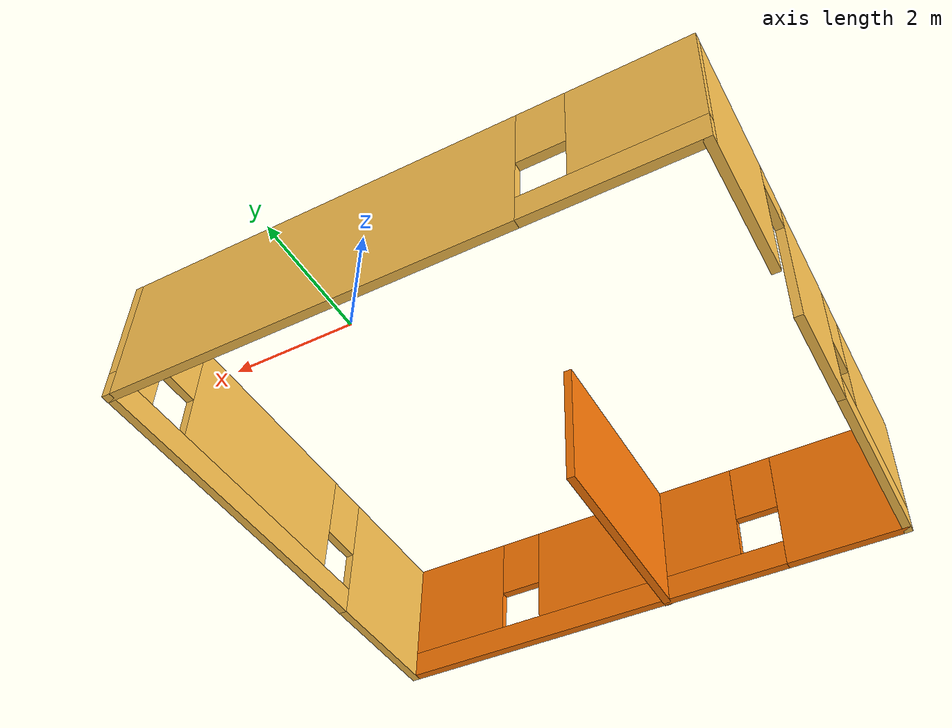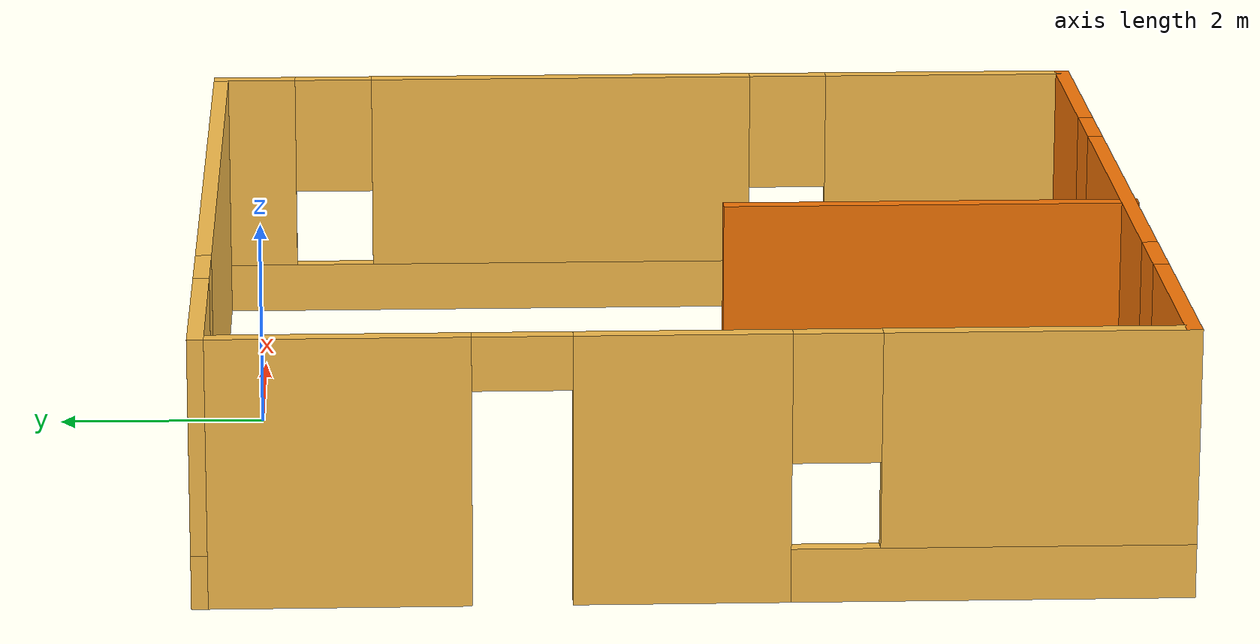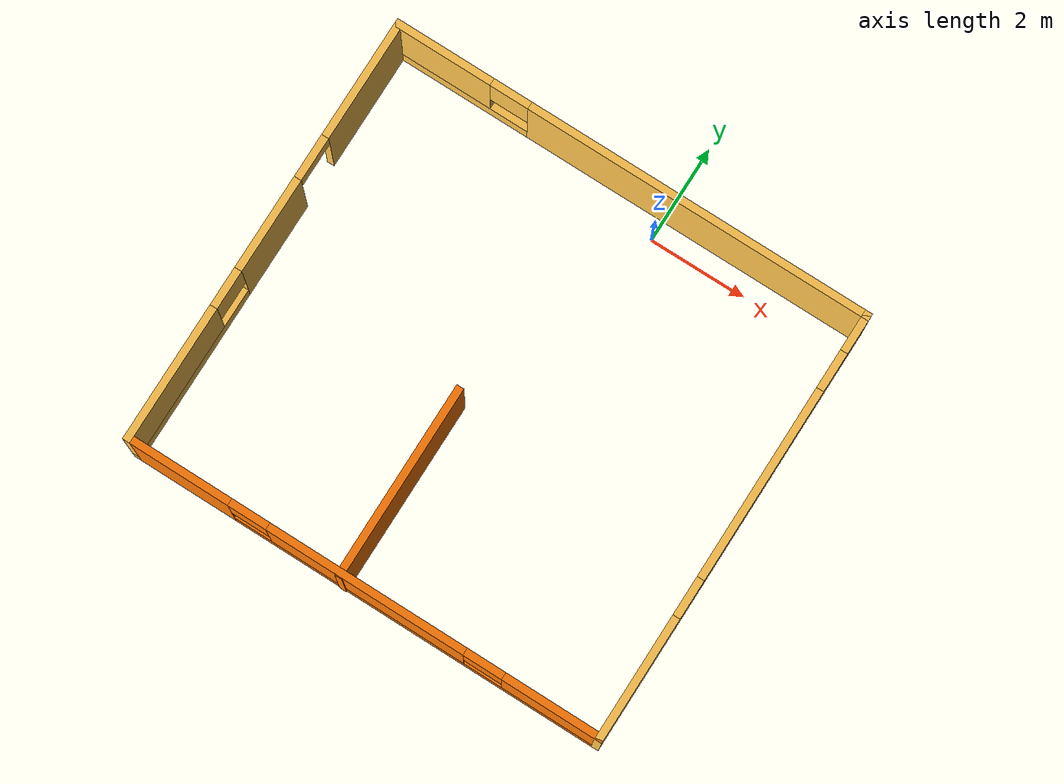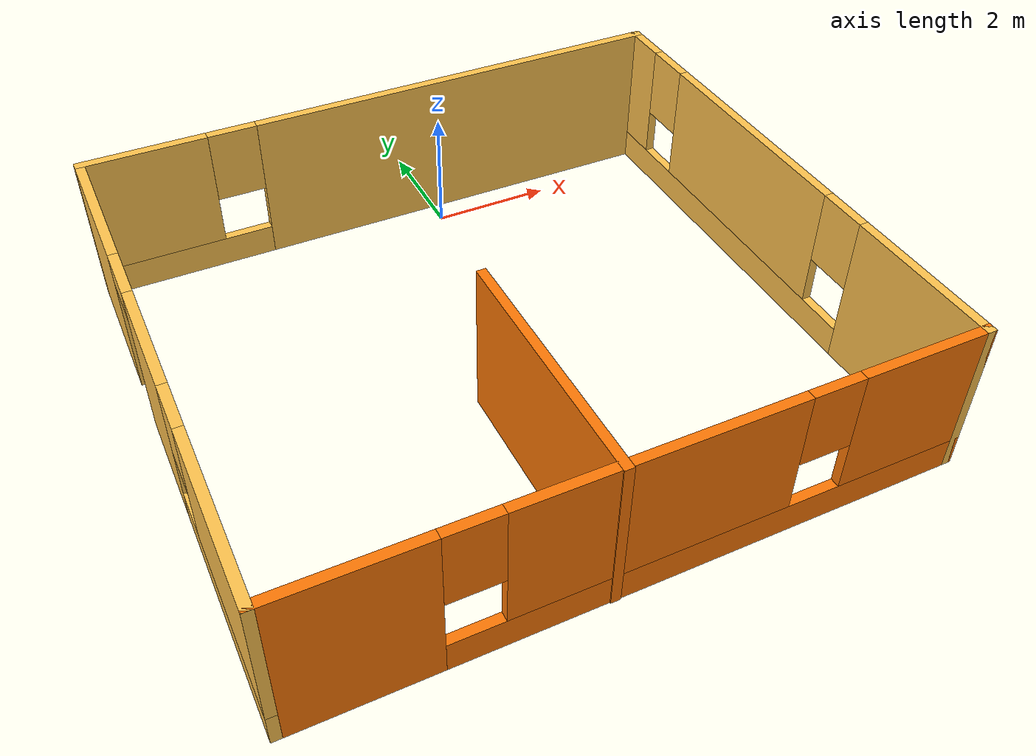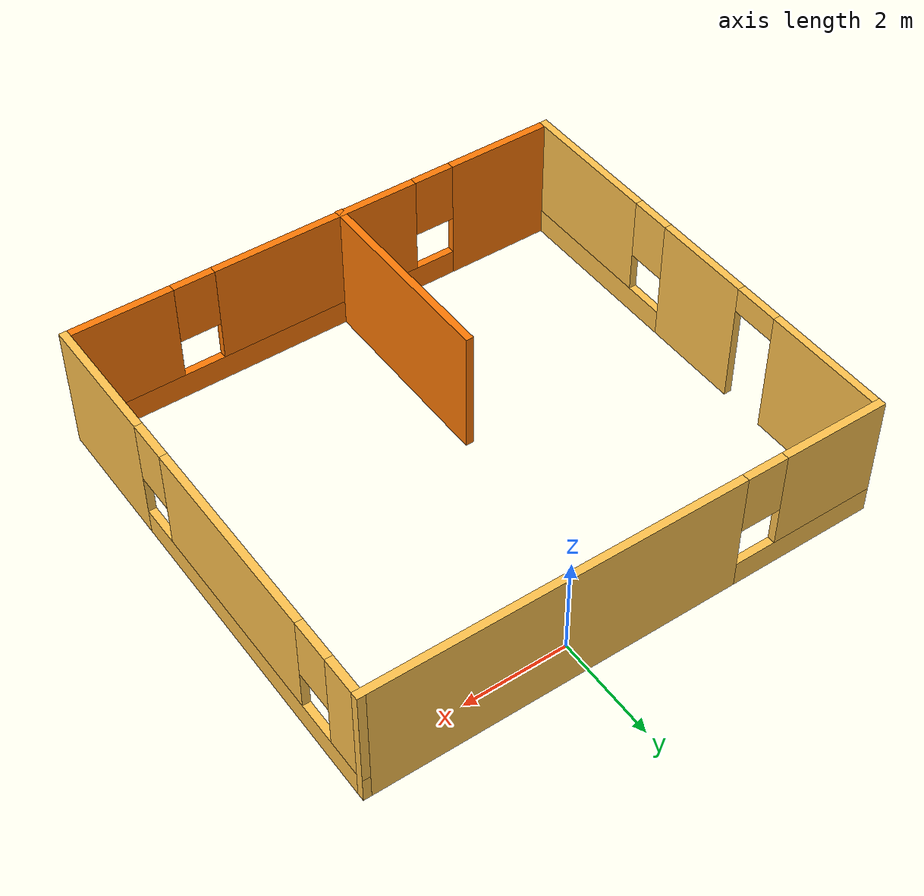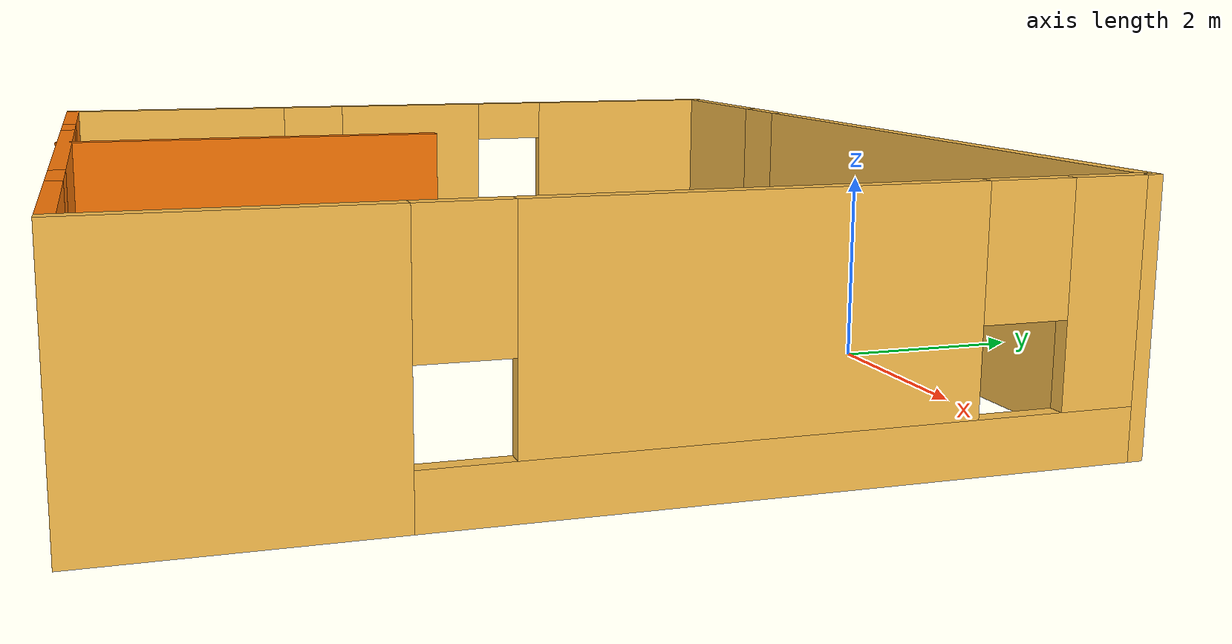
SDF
<?xml version='1.0'?>
<sdf version='1.6'>
  <model name='building2'>
    <pose frame=''>-0.823887 -3.96139 0 0 -0 0</pose>
    <link name='Wall_10'>
      <pose frame=''>0 4.43375 0 0 -0 3.14159</pose>
      <visual name='Wall_10_Visual_0'>
        <pose frame=''>-1.42682 0 1.25 0 -0 0</pose>
        <geometry>
          <box>
            <size>7.14635 0.15 2.5</size>
          </box>
        </geometry>
        <material>
          <script>
            <uri>file://media/materials/scripts/gazebo.material</uri>
            <name>Gazebo/Grey</name>
          </script>
          <ambient>1 0.764706 0.305882 1</ambient>
        </material>
        <meta>
          <layer>0</layer>
        </meta>
      </visual>
      <collision name='Wall_10_Collision_0'>
        <geometry>
          <box>
            <size>7.14635 0.15 2.5</size>
          </box>
        </geometry>
        <pose frame=''>-1.42682 0 1.25 0 -0 0</pose>
      </collision>
      <visual name='Wall_10_Visual_1'>
        <pose frame=''>3.57318 0 0.25 0 -0 0</pose>
        <geometry>
          <box>
            <size>2.85365 0.15 0.5</size>
          </box>
        </geometry>
        <material>
          <script>
            <uri>file://media/materials/scripts/gazebo.material</uri>
            <name>Gazebo/Grey</name>
          </script>
          <ambient>1 0.764706 0.305882 1</ambient>
        </material>
        <meta>
          <layer>0</layer>
        </meta>
      </visual>
      <collision name='Wall_10_Collision_1'>
        <geometry>
          <box>
            <size>2.85365 0.15 0.5</size>
          </box>
        </geometry>
        <pose frame=''>3.57318 0 0.25 0 -0 0</pose>
      </collision>
      <visual name='Wall_10_Visual_2'>
        <pose frame=''>3.97318 0 1.5 0 -0 0</pose>
        <geometry>
          <box>
            <size>2.05365 0.15 2</size>
          </box>
        </geometry>
        <material>
          <script>
            <uri>file://media/materials/scripts/gazebo.material</uri>
            <name>Gazebo/Grey</name>
          </script>
          <ambient>1 0.764706 0.305882 1</ambient>
        </material>
        <meta>
          <layer>0</layer>
        </meta>
      </visual>
      <collision name='Wall_10_Collision_2'>
        <geometry>
          <box>
            <size>2.05365 0.15 2</size>
          </box>
        </geometry>
        <pose frame=''>3.97318 0 1.5 0 -0 0</pose>
      </collision>
      <visual name='Wall_10_Visual_3'>
        <pose frame=''>2.54635 0 1.9 0 -0 0</pose>
        <geometry>
          <box>
            <size>0.8 0.15 1.2</size>
          </box>
        </geometry>
        <material>
          <script>
            <uri>file://media/materials/scripts/gazebo.material</uri>
            <name>Gazebo/Grey</name>
          </script>
          <ambient>1 0.764706 0.305882 1</ambient>
        </material>
        <meta>
          <layer>0</layer>
        </meta>
      </visual>
      <collision name='Wall_10_Collision_3'>
        <geometry>
          <box>
            <size>0.8 0.15 1.2</size>
          </box>
        </geometry>
        <pose frame=''>2.54635 0 1.9 0 -0 0</pose>
      </collision>
    </link>
    <link name='Wall_11'>
      <pose frame=''>-4.925 0.008745 0 0 0 -1.5708</pose>
      <visual name='Wall_11_Visual_0'>
        <pose frame=''>-3.24456 0 1.25 0 -0 0</pose>
        <geometry>
          <box>
            <size>2.51089 0.15 2.5</size>
          </box>
        </geometry>
        <material>
          <script>
            <uri>file://media/materials/scripts/gazebo.material</uri>
            <name>Gazebo/Grey</name>
          </script>
          <ambient>1 0.764706 0.305882 1</ambient>
        </material>
        <meta>
          <layer>0</layer>
        </meta>
      </visual>
      <collision name='Wall_11_Collision_0'>
        <geometry>
          <box>
            <size>2.51089 0.15 2.5</size>
          </box>
        </geometry>
        <pose frame=''>-3.24456 0 1.25 0 -0 0</pose>
      </collision>
      <visual name='Wall_11_Visual_1'>
        <pose frame=''>-0.114906 0 1.25 0 -0 0</pose>
        <geometry>
          <box>
            <size>1.94841 0.15 2.5</size>
          </box>
        </geometry>
        <material>
          <script>
            <uri>file://media/materials/scripts/gazebo.material</uri>
            <name>Gazebo/Grey</name>
          </script>
          <ambient>1 0.764706 0.305882 1</ambient>
        </material>
        <meta>
          <layer>0</layer>
        </meta>
      </visual>
      <collision name='Wall_11_Collision_1'>
        <geometry>
          <box>
            <size>1.94841 0.15 2.5</size>
          </box>
        </geometry>
        <pose frame=''>-0.114906 0 1.25 0 -0 0</pose>
      </collision>
      <visual name='Wall_11_Visual_2'>
        <pose frame=''>2.67965 0 0.25 0 -0 0</pose>
        <geometry>
          <box>
            <size>3.6407 0.15 0.5</size>
          </box>
        </geometry>
        <material>
          <script>
            <uri>file://media/materials/scripts/gazebo.material</uri>
            <name>Gazebo/Grey</name>
          </script>
          <ambient>1 0.764706 0.305882 1</ambient>
        </material>
        <meta>
          <layer>0</layer>
        </meta>
      </visual>
      <collision name='Wall_11_Collision_2'>
        <geometry>
          <box>
            <size>3.6407 0.15 0.5</size>
          </box>
        </geometry>
        <pose frame=''>2.67965 0 0.25 0 -0 0</pose>
      </collision>
      <visual name='Wall_11_Visual_3'>
        <pose frame=''>3.07965 0 1.5 0 -0 0</pose>
        <geometry>
          <box>
            <size>2.8407 0.15 2</size>
          </box>
        </geometry>
        <material>
          <script>
            <uri>file://media/materials/scripts/gazebo.material</uri>
            <name>Gazebo/Grey</name>
          </script>
          <ambient>1 0.764706 0.305882 1</ambient>
        </material>
        <meta>
          <layer>0</layer>
        </meta>
      </visual>
      <collision name='Wall_11_Collision_3'>
        <geometry>
          <box>
            <size>2.8407 0.15 2</size>
          </box>
        </geometry>
        <pose frame=''>3.07965 0 1.5 0 -0 0</pose>
      </collision>
      <visual name='Wall_11_Visual_4'>
        <pose frame=''>1.2593 0 1.9 0 -0 0</pose>
        <geometry>
          <box>
            <size>0.8 0.15 1.2</size>
          </box>
        </geometry>
        <material>
          <script>
            <uri>file://media/materials/scripts/gazebo.material</uri>
            <name>Gazebo/Grey</name>
          </script>
          <ambient>1 0.764706 0.305882 1</ambient>
        </material>
        <meta>
          <layer>0</layer>
        </meta>
      </visual>
      <collision name='Wall_11_Collision_4'>
        <geometry>
          <box>
            <size>0.8 0.15 1.2</size>
          </box>
        </geometry>
        <pose frame=''>1.2593 0 1.9 0 -0 0</pose>
      </collision>
      <visual name='Wall_11_Visual_5'>
        <pose frame=''>-1.53911 0 2.25 0 -0 0</pose>
        <geometry>
          <box>
            <size>0.9 0.15 0.5</size>
          </box>
        </geometry>
        <material>
          <script>
            <uri>file://media/materials/scripts/gazebo.material</uri>
            <name>Gazebo/Grey</name>
          </script>
          <ambient>1 0.764706 0.305882 1</ambient>
        </material>
        <meta>
          <layer>0</layer>
        </meta>
      </visual>
      <collision name='Wall_11_Collision_5'>
        <geometry>
          <box>
            <size>0.9 0.15 0.5</size>
          </box>
        </geometry>
        <pose frame=''>-1.53911 0 2.25 0 -0 0</pose>
      </collision>
    </link>
    <link name='Wall_13'>
      <collision name='Wall_13_Collision'>
        <geometry>
          <box>
            <size>4 0.15 2.5</size>
          </box>
        </geometry>
        <pose frame=''>0 0 1.25 0 -0 0</pose>
      </collision>
      <visual name='Wall_13_Visual'>
        <pose frame=''>0 0 1.25 0 -0 0</pose>
        <geometry>
          <box>
            <size>4 0.15 2.5</size>
          </box>
        </geometry>
        <material>
          <script>
            <uri>file://media/materials/scripts/gazebo.material</uri>
            <name>Gazebo/Grey</name>
          </script>
          <ambient>0.996078 0.47451 0.0196078 1</ambient>
        </material>
        <meta>
          <layer>0</layer>
        </meta>
      </visual>
      <pose frame=''>-0.465034 -2.50874 0 0 -0 1.5708</pose>
    </link>
    <link name='Wall_3'>
      <pose frame=''>0 -4.41625 0 0 -0 0</pose>
      <visual name='Wall_3_Visual_0'>
        <pose frame=''>-3.89447 0 1.25 0 -0 0</pose>
        <geometry>
          <box>
            <size>2.21106 0.15 2.5</size>
          </box>
        </geometry>
        <material>
          <script>
            <uri>file://media/materials/scripts/gazebo.material</uri>
            <name>Gazebo/Grey</name>
          </script>
          <ambient>0.996078 0.47451 0.0196078 1</ambient>
        </material>
        <meta>
          <layer>0</layer>
        </meta>
      </visual>
      <collision name='Wall_3_Collision_0'>
        <geometry>
          <box>
            <size>2.21106 0.15 2.5</size>
          </box>
        </geometry>
        <pose frame=''>-3.89447 0 1.25 0 -0 0</pose>
      </collision>
      <visual name='Wall_3_Visual_1'>
        <pose frame=''>1.10553 0 0.25 0 -0 0</pose>
        <geometry>
          <box>
            <size>7.78894 0.15 0.5</size>
          </box>
        </geometry>
        <material>
          <script>
            <uri>file://media/materials/scripts/gazebo.material</uri>
            <name>Gazebo/Grey</name>
          </script>
          <ambient>0.996078 0.47451 0.0196078 1</ambient>
        </material>
        <meta>
          <layer>0</layer>
        </meta>
      </visual>
      <collision name='Wall_3_Collision_1'>
        <geometry>
          <box>
            <size>7.78894 0.15 0.5</size>
          </box>
        </geometry>
        <pose frame=''>1.10553 0 0.25 0 -0 0</pose>
      </collision>
      <visual name='Wall_3_Visual_2'>
        <pose frame=''>0.068413 0 1.5 0 -0 0</pose>
        <geometry>
          <box>
            <size>4.11471 0.15 2</size>
          </box>
        </geometry>
        <material>
          <script>
            <uri>file://media/materials/scripts/gazebo.material</uri>
            <name>Gazebo/Grey</name>
          </script>
          <ambient>0.996078 0.47451 0.0196078 1</ambient>
        </material>
        <meta>
          <layer>0</layer>
        </meta>
      </visual>
      <collision name='Wall_3_Collision_2'>
        <geometry>
          <box>
            <size>4.11471 0.15 2</size>
          </box>
        </geometry>
        <pose frame=''>0.068413 0 1.5 0 -0 0</pose>
      </collision>
      <visual name='Wall_3_Visual_3'>
        <pose frame=''>3.96288 0 1.5 0 -0 0</pose>
        <geometry>
          <box>
            <size>2.07423 0.15 2</size>
          </box>
        </geometry>
        <material>
          <script>
            <uri>file://media/materials/scripts/gazebo.material</uri>
            <name>Gazebo/Grey</name>
          </script>
          <ambient>0.996078 0.47451 0.0196078 1</ambient>
        </material>
        <meta>
          <layer>0</layer>
        </meta>
      </visual>
      <collision name='Wall_3_Collision_3'>
        <geometry>
          <box>
            <size>2.07423 0.15 2</size>
          </box>
        </geometry>
        <pose frame=''>3.96288 0 1.5 0 -0 0</pose>
      </collision>
      <visual name='Wall_3_Visual_4'>
        <pose frame=''>-2.38894 0 1.9 0 -0 0</pose>
        <geometry>
          <box>
            <size>0.8 0.15 1.2</size>
          </box>
        </geometry>
        <material>
          <script>
            <uri>file://media/materials/scripts/gazebo.material</uri>
            <name>Gazebo/Grey</name>
          </script>
          <ambient>0.996078 0.47451 0.0196078 1</ambient>
        </material>
        <meta>
          <layer>0</layer>
        </meta>
      </visual>
      <collision name='Wall_3_Collision_4'>
        <geometry>
          <box>
            <size>0.8 0.15 1.2</size>
          </box>
        </geometry>
        <pose frame=''>-2.38894 0 1.9 0 -0 0</pose>
      </collision>
      <visual name='Wall_3_Visual_5'>
        <pose frame=''>2.52577 0 1.9 0 -0 0</pose>
        <geometry>
          <box>
            <size>0.8 0.15 1.2</size>
          </box>
        </geometry>
        <material>
          <script>
            <uri>file://media/materials/scripts/gazebo.material</uri>
            <name>Gazebo/Grey</name>
          </script>
          <ambient>0.996078 0.47451 0.0196078 1</ambient>
        </material>
        <meta>
          <layer>0</layer>
        </meta>
      </visual>
      <collision name='Wall_3_Collision_5'>
        <geometry>
          <box>
            <size>0.8 0.15 1.2</size>
          </box>
        </geometry>
        <pose frame=''>2.52577 0 1.9 0 -0 0</pose>
      </collision>
    </link>
    <link name='Wall_9'>
      <pose frame=''>4.925 0.008745 0 0 -0 1.5708</pose>
      <visual name='Wall_9_Visual_0'>
        <pose frame=''>-3.21082 0 1.25 0 -0 0</pose>
        <geometry>
          <box>
            <size>2.57835 0.15 2.5</size>
          </box>
        </geometry>
        <material>
          <script>
            <uri>file://media/materials/scripts/gazebo.material</uri>
            <name>Gazebo/Grey</name>
          </script>
          <ambient>1 0.764706 0.305882 1</ambient>
        </material>
        <meta>
          <layer>0</layer>
        </meta>
      </visual>
      <collision name='Wall_9_Collision_0'>
        <geometry>
          <box>
            <size>2.57835 0.15 2.5</size>
          </box>
        </geometry>
        <pose frame=''>-3.21082 0 1.25 0 -0 0</pose>
      </collision>
      <visual name='Wall_9_Visual_1'>
        <pose frame=''>1.28917 0 0.25 0 -0 0</pose>
        <geometry>
          <box>
            <size>6.42165 0.15 0.5</size>
          </box>
        </geometry>
        <material>
          <script>
            <uri>file://media/materials/scripts/gazebo.material</uri>
            <name>Gazebo/Grey</name>
          </script>
          <ambient>1 0.764706 0.305882 1</ambient>
        </material>
        <meta>
          <layer>0</layer>
        </meta>
      </visual>
      <collision name='Wall_9_Collision_1'>
        <geometry>
          <box>
            <size>6.42165 0.15 0.5</size>
          </box>
        </geometry>
        <pose frame=''>1.28917 0 0.25 0 -0 0</pose>
      </collision>
      <visual name='Wall_9_Visual_2'>
        <pose frame=''>0.865744 0 1.5 0 -0 0</pose>
        <geometry>
          <box>
            <size>3.97479 0.15 2</size>
          </box>
        </geometry>
        <material>
          <script>
            <uri>file://media/materials/scripts/gazebo.material</uri>
            <name>Gazebo/Grey</name>
          </script>
          <ambient>1 0.764706 0.305882 1</ambient>
        </material>
        <meta>
          <layer>0</layer>
        </meta>
      </visual>
      <collision name='Wall_9_Collision_2'>
        <geometry>
          <box>
            <size>3.97479 0.15 2</size>
          </box>
        </geometry>
        <pose frame=''>0.865744 0 1.5 0 -0 0</pose>
      </collision>
      <visual name='Wall_9_Visual_3'>
        <pose frame=''>4.07657 0 1.5 0 -0 0</pose>
        <geometry>
          <box>
            <size>0.846863 0.15 2</size>
          </box>
        </geometry>
        <material>
          <script>
            <uri>file://media/materials/scripts/gazebo.material</uri>
            <name>Gazebo/Grey</name>
          </script>
          <ambient>1 0.764706 0.305882 1</ambient>
        </material>
        <meta>
          <layer>0</layer>
        </meta>
      </visual>
      <collision name='Wall_9_Collision_3'>
        <geometry>
          <box>
            <size>0.846863 0.15 2</size>
          </box>
        </geometry>
        <pose frame=''>4.07657 0 1.5 0 -0 0</pose>
      </collision>
      <visual name='Wall_9_Visual_4'>
        <pose frame=''>-1.52165 0 1.9 0 -0 0</pose>
        <geometry>
          <box>
            <size>0.8 0.15 1.2</size>
          </box>
        </geometry>
        <material>
          <script>
            <uri>file://media/materials/scripts/gazebo.material</uri>
            <name>Gazebo/Grey</name>
          </script>
          <ambient>1 0.764706 0.305882 1</ambient>
        </material>
        <meta>
          <layer>0</layer>
        </meta>
      </visual>
      <collision name='Wall_9_Collision_4'>
        <geometry>
          <box>
            <size>0.8 0.15 1.2</size>
          </box>
        </geometry>
        <pose frame=''>-1.52165 0 1.9 0 -0 0</pose>
      </collision>
      <visual name='Wall_9_Visual_5'>
        <pose frame=''>3.25314 0 1.9 0 -0 0</pose>
        <geometry>
          <box>
            <size>0.8 0.15 1.2</size>
          </box>
        </geometry>
        <material>
          <script>
            <uri>file://media/materials/scripts/gazebo.material</uri>
            <name>Gazebo/Grey</name>
          </script>
          <ambient>1 0.764706 0.305882 1</ambient>
        </material>
        <meta>
          <layer>0</layer>
        </meta>
      </visual>
      <collision name='Wall_9_Collision_5'>
        <geometry>
          <box>
            <size>0.8 0.15 1.2</size>
          </box>
        </geometry>
        <pose frame=''>3.25314 0 1.9 0 -0 0</pose>
      </collision>
    </link>
    <static>1</static>
  </model>
</sdf>
